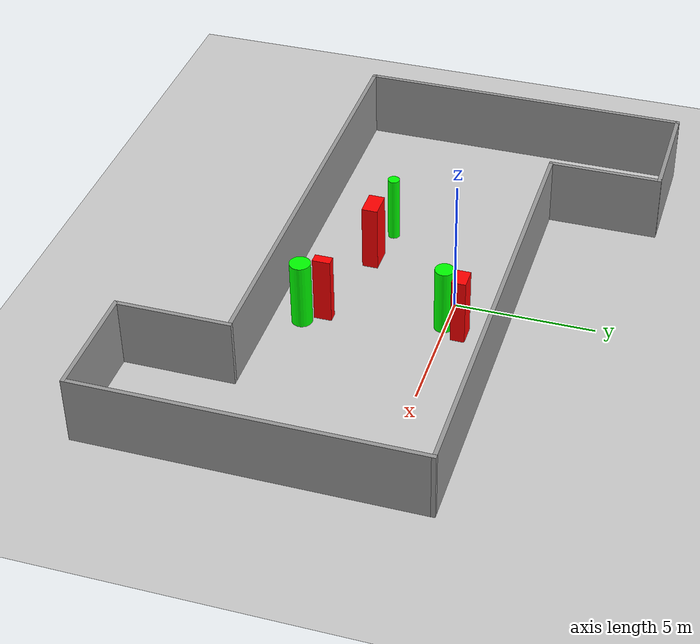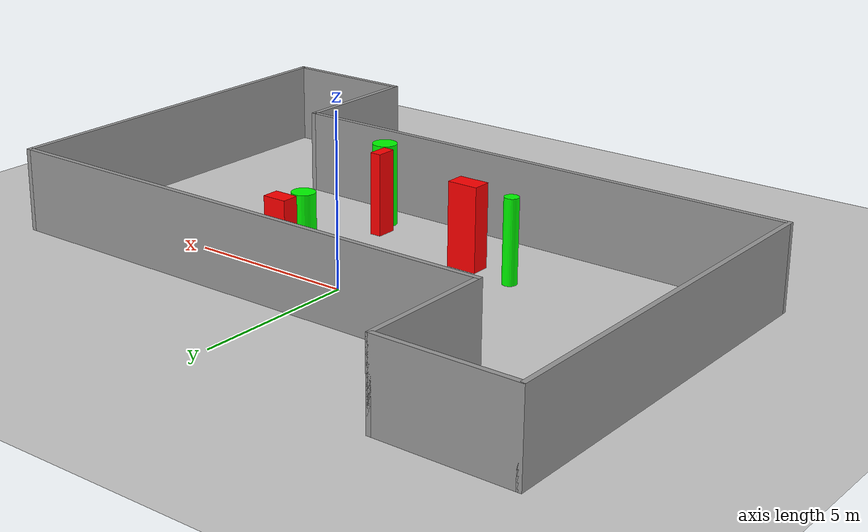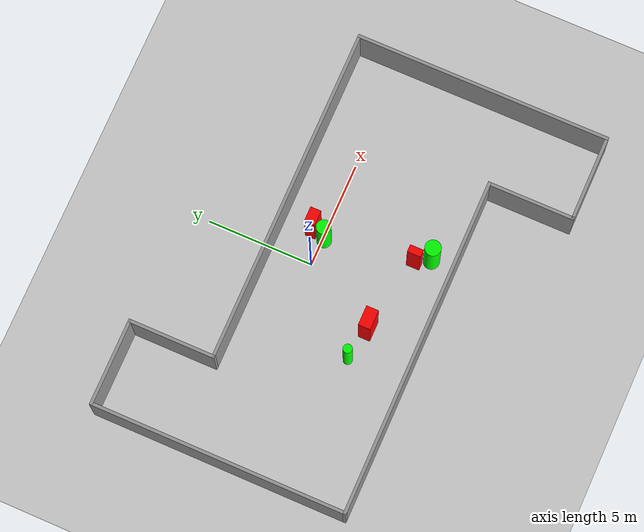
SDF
<sdf version="1.7">
 <world name="default">
  <light name="sun" type="directional">
   <pose>0 0 10 0 -0 0</pose>
   <diffuse>0.8 0.8 0.8 1</diffuse>
   <specular>0.2 0.2 0.2 1</specular>
   <attenuation>
    <range>1000</range>
    <constant>0.9</constant>
    <linear>0.01</linear>
    <quadratic>0.001</quadratic>
   </attenuation>
   <direction>-0.5 0.1 -0.9</direction>
   <spot><inner_angle>0</inner_angle><outer_angle>0</outer_angle><falloff>0</falloff></spot>
  </light>
  <model name="ground_plane">
   <static>1</static>
   <link name="link">
    <collision name="collision">
     <geometry><plane><normal>0 0 1</normal><size>100 100</size></plane></geometry>
     <surface>
      <contact><collide_bitmask>65535</collide_bitmask></contact>
      <friction><ode><mu>100</mu><mu2>50</mu2></ode></friction>
     </surface>
    </collision>
    <visual name="visual">
     <cast_shadows>0</cast_shadows>
     <geometry><plane><normal>0 0 1</normal><size>100 100</size></plane></geometry>
     <material>
      <script><uri>file://media/materials/scripts/gazebo.material</uri><name>Gazebo/Grey</name></script>
     </material>
    </visual>
   </link>
  </model>
  <gravity>0 0 -9.8</gravity>
  <magnetic_field>6e-06 2.3e-05 -4.2e-05</magnetic_field>
  <atmosphere type="adiabatic"/>
  <physics type="ode">
   <max_step_size>0.001</max_step_size>
   <real_time_factor>1</real_time_factor>
   <real_time_update_rate>1000</real_time_update_rate>
  </physics>
  <scene><ambient>0.4 0.4 0.4 1</ambient><background>0.7 0.7 0.7 1</background><shadows>1</shadows></scene>
  <spherical_coordinates>
   <surface_model>EARTH_WGS84</surface_model>
   <latitude_deg>0</latitude_deg>
   <longitude_deg>0</longitude_deg>
   <elevation>0</elevation>
   <heading_deg>0</heading_deg>
  </spherical_coordinates>
  <model name="my_base_walls">
   <link name="Wall_13">
    <collision name="Wall_13_Collision">
     <geometry><box><size>12.15 0.15 2.5</size></box></geometry>
     <pose>0 0 1.25 0 -0 0</pose>
    </collision>
    <visual name="Wall_13_Visual">
     <pose>0 0 1.25 0 -0 0</pose>
     <geometry><box><size>12.15 0.15 2.5</size></box></geometry>
     <material>
      <script><uri>file://media/materials/scripts/gazebo.material</uri><name>Gazebo/Grey</name></script>
      <ambient>1 1 1 1</ambient>
     </material>
     <meta><layer>0</layer></meta>
    </visual>
    <pose>10 -2 0 0 -0 1.5708</pose>
   </link>
   <link name="Wall_15">
    <collision name="Wall_15_Collision">
     <geometry><box><size>16.15 0.15 2.5</size></box></geometry>
     <pose>0 0 1.25 0 -0 0</pose>
    </collision>
    <visual name="Wall_15_Visual">
     <pose>0 0 1.25 0 -0 0</pose>
     <geometry><box><size>16.15 0.15 2.5</size></box></geometry>
     <material>
      <script><uri>file://media/materials/scripts/gazebo.material</uri><name>Gazebo/Grey</name></script>
      <ambient>1 1 1 1</ambient>
     </material>
     <meta><layer>0</layer></meta>
    </visual>
    <pose>2 4 0 0 -0 3.14159</pose>
   </link>
   <link name="Wall_17">
    <collision name="Wall_17_Collision">
     <geometry><box><size>4.15 0.15 2.5</size></box></geometry>
     <pose>0 0 1.25 0 -0 0</pose>
    </collision>
    <visual name="Wall_17_Visual">
     <pose>0 0 1.25 0 -0 0</pose>
     <geometry><box><size>4.15 0.15 2.5</size></box></geometry>
     <material>
      <script><uri>file://media/materials/scripts/gazebo.material</uri><name>Gazebo/Grey</name></script>
      <ambient>1 1 1 1</ambient>
     </material>
     <meta><layer>0</layer></meta>
    </visual>
    <pose>6 -6 0 0 -0 -1.5708</pose>
   </link>
   <link name="Wall_19">
    <collision name="Wall_19_Collision">
     <geometry><box><size>12.15 0.15 2.5</size></box></geometry>
     <pose>0 0 1.25 0 -0 0</pose>
    </collision>
    <visual name="Wall_19_Visual">
     <pose>0 0 1.25 0 -0 0</pose>
     <geometry><box><size>12.15 0.15 2.5</size></box></geometry>
     <material>
      <script><uri>file://media/materials/scripts/gazebo.material</uri><name>Gazebo/Grey</name></script>
      <ambient>1 1 1 1</ambient>
     </material>
     <meta><layer>0</layer></meta>
    </visual>
    <pose>-10 2 0 0 -0 1.5708</pose>
   </link>
   <link name="Wall_21">
    <collision name="Wall_21_Collision">
     <geometry><box><size>4.15 0.15 2.5</size></box></geometry>
     <pose>0 0 1.25 0 -0 0</pose>
    </collision>
    <visual name="Wall_21_Visual">
     <pose>0 0 1.25 0 -0 0</pose>
     <geometry><box><size>4.15 0.15 2.5</size></box></geometry>
     <material>
      <script><uri>file://media/materials/scripts/gazebo.material</uri><name>Gazebo/Grey</name></script>
      <ambient>1 1 1 1</ambient>
     </material>
     <meta><layer>0</layer></meta>
    </visual>
    <pose>-8 8 0 0 -0 0</pose>
   </link>
   <link name="Wall_23">
    <collision name="Wall_23_Collision">
     <geometry><box><size>4.15 0.15 2.5</size></box></geometry>
     <pose>0 0 1.25 0 -0 0</pose>
    </collision>
    <visual name="Wall_23_Visual">
     <pose>0 0 1.25 0 -0 0</pose>
     <geometry><box><size>4.15 0.15 2.5</size></box></geometry>
     <material>
      <script><uri>file://media/materials/scripts/gazebo.material</uri><name>Gazebo/Grey</name></script>
      <ambient>1 1 1 1</ambient>
     </material>
     <meta><layer>0</layer></meta>
    </visual>
    <pose>-6 6 0 0 -0 -1.5708</pose>
   </link>
   <link name="Wall_25">
    <collision name="Wall_25_Collision">
     <geometry><box><size>4.15 0.15 2.5</size></box></geometry>
     <pose>0 0 1.25 0 -0 0</pose>
    </collision>
    <visual name="Wall_25_Visual">
     <pose>0 0 1.25 0 -0 0</pose>
     <geometry><box><size>4.15 0.15 2.5</size></box></geometry>
     <material>
      <script><uri>file://media/materials/scripts/gazebo.material</uri><name>Gazebo/Grey</name></script>
      <ambient>1 1 1 1</ambient>
     </material>
     <meta><layer>0</layer></meta>
    </visual>
    <pose>8 -8 0 0 -0 0</pose>
   </link>
   <link name="Wall_9">
    <collision name="Wall_9_Collision">
     <geometry><box><size>16.15 0.15 2.5</size></box></geometry>
     <pose>0 0 1.25 0 -0 0</pose>
    </collision>
    <visual name="Wall_9_Visual">
     <pose>0 0 1.25 0 -0 0</pose>
     <geometry><box><size>16.15 0.15 2.5</size></box></geometry>
     <material>
      <script><uri>file://media/materials/scripts/gazebo.material</uri><name>Gazebo/Grey</name></script>
      <ambient>1 1 1 1</ambient>
     </material>
     <meta><layer>0</layer></meta>
    </visual>
    <pose>-2 -4 0 0 -0 3.14159</pose>
   </link>
   <static>1</static>
   <pose>-0 -2 0 0 -0 0</pose>
  </model>
  <model name="cylinder1">
   <static>1</static>
   <link name="link">
    <inertial>
     <mass>1</mass>
     <inertia><ixx>0.5</ixx><ixy>0</ixy><ixz>0</ixz><iyy>0.5</iyy><iyz>0</iyz><izz>1</izz></inertia>
    </inertial>
    <collision name="collision">
     <geometry><cylinder><radius>0.37449530536211717</radius><length>2.5</length></cylinder></geometry>
    </collision>
    <visual name="visual">
     <geometry><cylinder><radius>0.37449530536211717</radius><length>2.5</length></cylinder></geometry>
     <material>
      <ambient>0 1 0 1</ambient>
      <diffuse>0 1 0 1</diffuse>
      <specular>0.1 0.1 0.1 1</specular>
      <emissive>0 0 0 0</emissive>
     </material>
    </visual>
   </link>
   <pose>2.2990152341072303 -4.870635263354082 1.25 0 0 0</pose>
  </model>
  <model name="cylinder2">
   <static>1</static>
   <link name="link">
    <inertial>
     <mass>1</mass>
     <inertia><ixx>0.5</ixx><ixy>0</ixy><ixz>0</ixz><iyy>0.5</iyy><iyz>0</iyz><izz>1</izz></inertia>
    </inertial>
    <collision name="collision">
     <geometry><cylinder><radius>0.2148650005782848</radius><length>2.5</length></cylinder></geometry>
    </collision>
    <visual name="visual">
     <geometry><cylinder><radius>0.2148650005782848</radius><length>2.5</length></cylinder></geometry>
     <material>
      <ambient>0 1 0 1</ambient>
      <diffuse>0 1 0 1</diffuse>
      <specular>0.1 0.1 0.1 1</specular>
      <emissive>0 0 0 0</emissive>
     </material>
    </visual>
   </link>
   <pose>-3.3441487696430348 -3.228867637500641 1.25 0 0 0</pose>
  </model>
  <model name="cylinder3">
   <static>1</static>
   <link name="link">
    <inertial>
     <mass>1</mass>
     <inertia><ixx>0.5</ixx><ixy>0</ixy><ixz>0</ixz><iyy>0.5</iyy><iyz>0</iyz><izz>1</izz></inertia>
    </inertial>
    <collision name="collision">
     <geometry><cylinder><radius>0.34040797371121323</radius><length>2.5</length></cylinder></geometry>
    </collision>
    <visual name="visual">
     <geometry><cylinder><radius>0.34040797371121323</radius><length>2.5</length></cylinder></geometry>
     <material>
      <ambient>0 1 0 1</ambient>
      <diffuse>0 1 0 1</diffuse>
      <specular>0.1 0.1 0.1 1</specular>
      <emissive>0 0 0 0</emissive>
     </material>
    </visual>
   </link>
   <pose>1.2542895922410988 -0.07133290454031904 1.25 0 0 0</pose>
  </model>
  <model name="box1">
   <static>1</static>
   <link name="link">
    <inertial>
     <mass>1</mass>
     <inertia><ixx>0.083</ixx><ixy>0</ixy><ixz>0</ixz><iyy>0.083</iyy><iyz>0</iyz><izz>0.083</izz></inertia>
    </inertial>
    <collision name="collision">
     <geometry><box><size>0.7235233336081379 0.5035175768168124 2.5</size></box></geometry>
    </collision>
    <visual name="visual">
     <geometry><box><size>0.7235233336081379 0.5035175768168124 2.5</size></box></geometry>
     <material>
      <ambient>1 0 0 1</ambient>
      <diffuse>1 0 0 1</diffuse>
      <specular>0.1 0.1 0.1 1</specular>
      <emissive>0 0 0 0</emissive>
     </material>
    </visual>
    <sensor name="my_contact" type="contact">
     <contact><collision>box_collision</collision><topic>__default_topic__</topic></contact>
    </sensor>
   </link>
   <pose>1.5149836864449382 0.5739909564732386 1.25 0 0 0</pose>
  </model>
  <model name="box2">
   <static>1</static>
   <link name="link">
    <inertial>
     <mass>1</mass>
     <inertia><ixx>0.083</ixx><ixy>0</ixy><ixz>0</ixz><iyy>0.083</iyy><iyz>0</iyz><izz>0.083</izz></inertia>
    </inertial>
    <collision name="collision">
     <geometry><box><size>0.9290189125096155 0.5741697782670423 2.5</size></box></geometry>
    </collision>
    <visual name="visual">
     <geometry><box><size>0.9290189125096155 0.5741697782670423 2.5</size></box></geometry>
     <material>
      <ambient>1 0 0 1</ambient>
      <diffuse>1 0 0 1</diffuse>
      <specular>0.1 0.1 0.1 1</specular>
      <emissive>0 0 0 0</emissive>
     </material>
    </visual>
    <sensor name="my_contact" type="contact">
     <contact><collision>box_collision</collision><topic>__default_topic__</topic></contact>
    </sensor>
   </link>
   <pose>-1.7144146554910016 -3.5071937329293776 1.25 0 0 0</pose>
  </model>
  <model name="box3">
   <static>1</static>
   <link name="link">
    <inertial>
     <mass>1</mass>
     <inertia><ixx>0.083</ixx><ixy>0</ixy><ixz>0</ixz><iyy>0.083</iyy><iyz>0</iyz><izz>0.083</izz></inertia>
    </inertial>
    <collision name="collision">
     <geometry><box><size>0.34685141855358426 0.6342890065452752 2.5</size></box></geometry>
    </collision>
    <visual name="visual">
     <geometry><box><size>0.34685141855358426 0.6342890065452752 2.5</size></box></geometry>
     <material>
      <ambient>1 0 0 1</ambient>
      <diffuse>1 0 0 1</diffuse>
      <specular>0.1 0.1 0.1 1</specular>
      <emissive>0 0 0 0</emissive>
     </material>
    </visual>
    <sensor name="my_contact" type="contact">
     <contact><collision>box_collision</collision><topic>__default_topic__</topic></contact>
    </sensor>
   </link>
   <pose>1.871262502616732 -4.207210263903252 1.25 0 0 0</pose>
  </model>
 </world>
</sdf>
